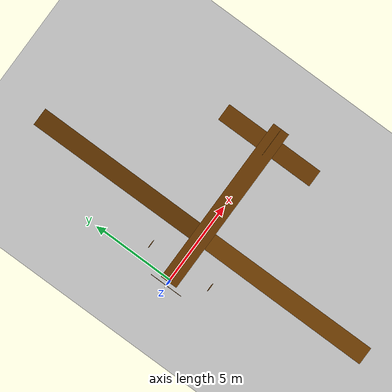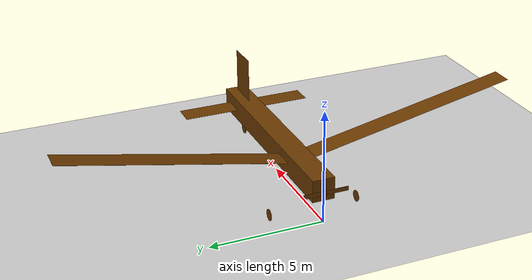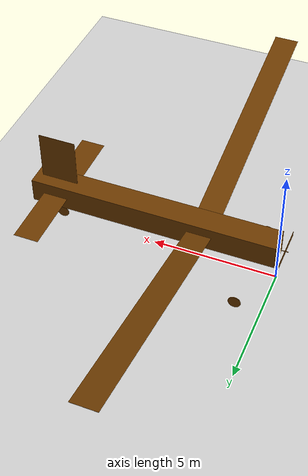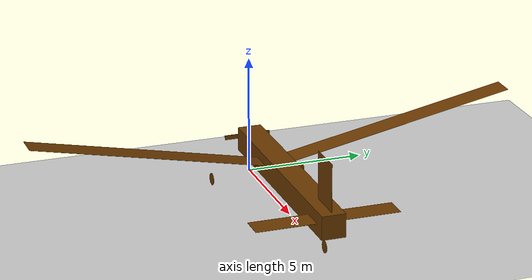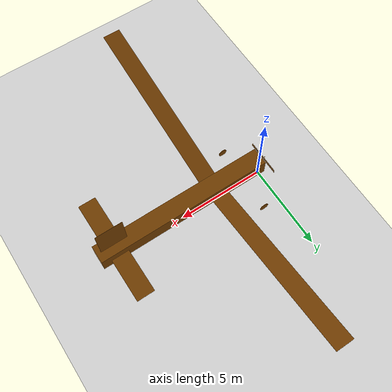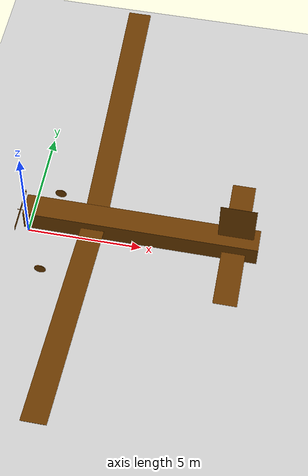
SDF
<?xml version="1.0" ?>
<sdf version="1.6">
  <world name="lift_drag">

    <plugin
      filename="ignition-gazebo-physics-system"
      name="ignition::gazebo::systems::Physics">
    </plugin>
    <plugin
      filename="ignition-gazebo-user-commands-system"
      name="ignition::gazebo::systems::UserCommands">
    </plugin>
    <plugin
      filename="ignition-gazebo-scene-broadcaster-system"
      name="ignition::gazebo::systems::SceneBroadcaster">
    </plugin>
    <gui fullscreen="0">

      <!-- 3D scene -->
      <plugin filename="GzScene3D" name="3D View">
        <ignition-gui>
          <title>3D View</title>
          <property type="bool" key="showTitleBar">false</property>
          <property type="string" key="state">docked</property>
        </ignition-gui>

        <engine>ogre2</engine>
        <scene>scene</scene>
        <ambient_light>0.4 0.4 0.4</ambient_light>
        <background_color>0.8 0.8 0.8</background_color>
        <camera_pose>20 0 3 0 0.0 3.14</camera_pose>
      </plugin>

      <!-- World control -->
      <plugin filename="WorldControl" name="World control">
        <ignition-gui>
          <title>World control</title>
          <property type="bool" key="showTitleBar">false</property>
          <property type="bool" key="resizable">false</property>
          <property type="double" key="height">72</property>
          <property type="double" key="width">121</property>
          <property type="double" key="z">1</property>

          <property type="string" key="state">floating</property>
          <anchors target="3D View">
            <line own="left" target="left"/>
            <line own="bottom" target="bottom"/>
          </anchors>
        </ignition-gui>

        <play_pause>true</play_pause>
        <step>true</step>
        <start_paused>true</start_paused>

      </plugin>

      <!-- World statistics -->
      <plugin filename="WorldStats" name="World stats">
        <ignition-gui>
          <title>World stats</title>
          <property type="bool" key="showTitleBar">false</property>
          <property type="bool" key="resizable">false</property>
          <property type="double" key="height">110</property>
          <property type="double" key="width">290</property>
          <property type="double" key="z">1</property>

          <property type="string" key="state">floating</property>
          <anchors target="3D View">
            <line own="right" target="right"/>
            <line own="bottom" target="bottom"/>
          </anchors>
        </ignition-gui>

        <sim_time>true</sim_time>
        <real_time>true</real_time>
        <real_time_factor>true</real_time_factor>
        <iterations>true</iterations>
      </plugin>
    </gui>

    <light type="directional" name="sun">
      <cast_shadows>true</cast_shadows>
      <pose>0 0 10 0 0 0</pose>
      <diffuse>1 1 1 1</diffuse>
      <specular>0.5 0.5 0.5 1</specular>
      <attenuation>
        <range>1000</range>
        <constant>0.9</constant>
        <linear>0.01</linear>
        <quadratic>0.001</quadratic>
      </attenuation>
      <direction>-0.5 0.1 -0.9</direction>
    </light>

    <model name="ground_plane">
      <static>true</static>
      <link name="link">
        <collision name="collision">
          <geometry>
            <plane>
              <normal>0 0 1</normal>
              <size>100000 100</size>
            </plane>
          </geometry>
        </collision>
        <visual name="visual">
          <geometry>
            <plane>
              <normal>0 0 1</normal>
              <size>100000 100</size>
            </plane>
          </geometry>
          <material>
            <ambient>0.8 0.8 0.8 1</ambient>
            <diffuse>0.8 0.8 0.8 1</diffuse>
            <specular>0.8 0.8 0.8 1</specular>
          </material>
        </visual>
      </link>
    </model>

    <model name="propeller_plane">
      <pose>0 0 0 0 0 0</pose>
      <static>false</static>
      <link name="body">
        <pose>5.0 0 1.5 0 0 0</pose>
        <inertial>
          <pose>-1.5 0.0 0.0 0.0 0.0 0.0</pose>
          <inertia>
            <ixx>5.8</ixx>
            <ixy>0.0</ixy>
            <ixz>0.0</ixz>
            <iyy>10.8</iyy>
            <iyz>0.0</iyz>
            <izz>10.8</izz>
          </inertia>
          <mass>200.0</mass>
        </inertial>
        <collision name="collision">
          <geometry>
            <box>
              <size>10 1 1</size>
            </box>
          </geometry>
          <surface>
            <friction>
              <ode>
                <mu>0.3</mu>
                <mu2>0.3</mu2>
              </ode>
            </friction>
          </surface>
        </collision>
        <visual name="visual">
          <geometry>
            <box>
              <size>10 1 1</size>
            </box>
          </geometry>
          <material>
            <ambient>0.2 0.2 0.2 1.0</ambient>
            <diffuse>.421 0.225 0.0 1.0</diffuse>
          </material>
        </visual>
        <sensor name="camera" type="camera">
          <pose>25 0 0.0 0 0.0 3.1416</pose>
          <camera>
            <horizontal_fov>1.347</horizontal_fov>
            <image>
              <width>320</width>
              <height>240</height>
            </image>
            <clip>
              <near>0.1</near>
              <far>1000</far>
            </clip>
          </camera>
          <always_on>1</always_on>
          <update_rate>30</update_rate>
          <visualize>true</visualize>
        </sensor>
      </link>
      <link name="wheel_1">
        <pose>9.0 0 0.25 1.57079 0 0</pose>
        <inertial>
          <pose>0.0 0.0 0.0 0.0 0.0 0.0</pose>
          <inertia>
            <ixx>0.8</ixx>
            <ixy>0.0</ixy>
            <ixz>0.0</ixz>
            <iyy>0.8</iyy>
            <iyz>0.0</iyz>
            <izz>0.8</izz>
          </inertia>
          <mass>10.0</mass>
        </inertial>
        <collision name="collision">
          <geometry>
            <cylinder>
              <radius>0.25</radius>
              <length>0.03</length>
            </cylinder>
          </geometry>
          <surface>
            <friction>
              <ode>
                <mu>0.3</mu>
                <mu2>0.3</mu2>
              </ode>
            </friction>
          </surface>
        </collision>
        <visual name="visual">
          <geometry>
            <cylinder>
              <radius>0.25</radius>
              <length>0.03</length>
            </cylinder>
          </geometry>
          <material>
            <ambient>0.2 0.2 0.2 1.0</ambient>
            <diffuse>.421 0.225 0.0 1.0</diffuse>
          </material>
        </visual>
      </link>
      <link name="wheel_2">
        <pose>1.0 -2.0 0.25 1.57079 0 0</pose>
        <inertial>
          <pose>0.0 0.0 0.0 0.0 0.0 0.0</pose>
          <inertia>
            <ixx>0.8</ixx>
            <ixy>0.0</ixy>
            <ixz>0.0</ixz>
            <iyy>0.8</iyy>
            <iyz>0.0</iyz>
            <izz>0.8</izz>
          </inertia>
          <mass>10.0</mass>
        </inertial>
        <collision name="collision">
          <geometry>
            <cylinder>
              <radius>0.25</radius>
              <length>0.03</length>
            </cylinder>
          </geometry>
          <surface>
            <friction>
              <ode>
                <mu>0.3</mu>
                <mu2>0.3</mu2>
              </ode>
            </friction>
          </surface>
        </collision>
        <visual name="visual">
          <geometry>
            <cylinder>
              <radius>0.25</radius>
              <length>0.03</length>
            </cylinder>
          </geometry>
          <material>
            <ambient>0.2 0.2 0.2 1.0</ambient>
            <diffuse>.421 0.225 0.0 1.0</diffuse>
          </material>
        </visual>
      </link>
      <link name="wheel_3">
        <pose>1.0 2.0 0.25 1.57079 0 0</pose>
        <inertial>
          <pose>0.0 0.0 0.0 0.0 0.0 0.0</pose>
          <inertia>
            <ixx>0.8</ixx>
            <ixy>0.0</ixy>
            <ixz>0.0</ixz>
            <iyy>0.8</iyy>
            <iyz>0.0</iyz>
            <izz>0.8</izz>
          </inertia>
          <mass>10.0</mass>
        </inertial>
        <collision name="collision">
          <geometry>
            <cylinder>
              <radius>0.25</radius>
              <length>0.03</length>
            </cylinder>
          </geometry>
          <surface>
            <friction>
              <ode>
                <mu>0.3</mu>
                <mu2>0.3</mu2>
              </ode>
            </friction>
          </surface>
        </collision>
        <visual name="visual">
          <geometry>
            <cylinder>
              <radius>0.25</radius>
              <length>0.03</length>
            </cylinder>
          </geometry>
          <material>
            <ambient>0.2 0.2 0.2 1.0</ambient>
            <diffuse>.421 0.225 0.0 1.0</diffuse>
          </material>
        </visual>
      </link>
      <link name="rod_1">
        <pose>-0.25 0 1.5 0 0 0</pose>
        <inertial>
          <pose>0.0 0.0 0 0.0 0.0 0.0</pose>
          <inertia>
            <ixx>0.0012</ixx>
            <ixy>0.0</ixy>
            <ixz>0.0</ixz>
            <iyy>0.012</iyy>
            <iyz>0.0</iyz>
            <izz>0.012</izz>
          </inertia>
          <mass>1.0</mass>
        </inertial>
        <collision name="collision">
          <geometry>
            <box>
              <size>0.25 0.02 0.02</size>
            </box>
          </geometry>
        </collision>
        <visual name="visual">
          <geometry>
            <box>
              <size>0.25 0.02 0.02</size>
            </box>
          </geometry>
          <material>
            <ambient>0.3 0.3 0.3 1.0</ambient>
            <diffuse>.421 0.225 0.0 1.0</diffuse>
          </material>
        </visual>
      </link>

      <!-- propeller -->
      <link name="blade_1">
        <pose>-0.25 0 1.5 0 0 0</pose>
        <inertial>
          <pose>0.0 0.5 0 0.0 0.0 0.0</pose>
          <inertia>
            <ixx>0.00465</ixx>
            <ixy>0.0</ixy>
            <ixz>0.0</ixz>
            <iyy>0.00006</iyy>
            <iyz>0.0</iyz>
            <izz>0.00470</izz>
          </inertia>
          <mass>0.1</mass>
        </inertial>
        <collision name="collision">
          <pose>0.0 0.5 0 0.0 0.0 0.0</pose>
          <geometry>
            <box>
              <size>0.01 1.0 0.2</size>
            </box>
          </geometry>
        </collision>
        <visual name="visual">
          <pose>0.0 0.5 0 0.0 0.0 0.0</pose>
          <geometry>
            <box>
              <size>0.01 1.0 0.2</size>
            </box>
          </geometry>
          <material>
            <ambient>0.5 0.2 0.2 1.0</ambient>
            <diffuse>.421 0.225 0.0 1.0</diffuse>
          </material>
        </visual>
      </link>
      <link name="blade_2">
        <pose>-0.25 0 1.5 0 0 3.141593</pose>
        <inertial>
          <pose>0.0 0.5 0 0.0 0.0 0.0</pose>
          <inertia>
            <ixx>0.00465</ixx>
            <ixy>0.0</ixy>
            <ixz>0.0</ixz>
            <iyy>0.00006</iyy>
            <iyz>0.0</iyz>
            <izz>0.00470</izz>
          </inertia>
          <mass>0.1</mass>
        </inertial>
        <collision name="collision">
          <pose>0.0 0.5 0 0.0 0.0 0.0</pose>
          <geometry>
            <box>
              <size>0.01 1.0 0.2</size>
            </box>
          </geometry>
        </collision>
        <visual name="visual">
          <pose>0.0 0.5 0 0.0 0.0 0</pose>
          <geometry>
            <box>
              <size>0.01 1.0 0.2</size>
            </box>
          </geometry>
          <material>
            <ambient>0.2 0.5 0.2 1.0</ambient>
            <diffuse>.421 0.225 0.0 1.0</diffuse>
          </material>
        </visual>
      </link>
      <joint name="blade_1_joint" type="fixed">
        <parent>rod_1</parent>
        <child>blade_1</child>
        <pose>0.0 0.0 0.0 0.0 0.0 0.0</pose>
      </joint>
      <joint name="blade_2_joint" type="fixed">
        <parent>rod_1</parent>
        <child>blade_2</child>
        <pose>0.0 0.0 0.0 0.0 0.0 0.0</pose>
      </joint>
      <plugin
        filename="ignition-gazebo-lift-drag-system"
        name="ignition::gazebo::systems::LiftDrag">
        <a0>0.2</a0>
        <cla>10.000</cla>
        <cda>0.0001</cda>
        <cma>0.00</cma>
        <alpha_stall>10.0</alpha_stall>
        <cla_stall>1.0</cla_stall>
        <cda_stall>0.001</cda_stall>
        <cma_stall>0.0</cma_stall>
        <cp>0.0 0.5 0</cp>
        <area>0.2</area>
        <air_density>1.2041</air_density>
        <forward>0 0 -1</forward>
        <upward>-1 0 0</upward>
        <link_name>blade_1</link_name>
      </plugin>
      <plugin
        filename="ignition-gazebo-lift-drag-system"
        name="ignition::gazebo::systems::LiftDrag">
        <a0>0.2</a0>
        <cla>10.000</cla>
        <cda>0.0001</cda>
        <cma>0.00</cma>
        <alpha_stall>10.0</alpha_stall>
        <cla_stall>1.0</cla_stall>
        <cda_stall>0.001</cda_stall>
        <cma_stall>0.0</cma_stall>
        <cp>0.0 0.5 0</cp>
        <area>0.2</area>
        <air_density>1.2041</air_density>
        <forward>0 0 1</forward>
        <upward>1 0 0</upward>
        <link_name>blade_2</link_name>
      </plugin>
      <joint name="wheel_1_joint" type="revolute">
        <parent>body</parent>
        <child>wheel_1</child>
        <pose>0.0 0.0 0.0 0.0 0.0 0.0</pose>
        <axis>
          <use_parent_model_frame>1</use_parent_model_frame>
          <limit>
            <lower>-1e16</lower>
            <upper>1e16</upper>
          </limit>
          <xyz>0.0 1.0 0.0</xyz>
          <dynamics>
            <damping>0.0001</damping>
          </dynamics>
        </axis>
        <physics>
          <ode>
            <implicit_spring_damper>1</implicit_spring_damper>
          </ode>
        </physics>
      </joint>
      <joint name="wheel_2_joint" type="revolute">
        <parent>body</parent>
        <child>wheel_2</child>
        <pose>0.0 0.0 0.0 0.0 0.0 0.0</pose>
        <axis>
          <use_parent_model_frame>1</use_parent_model_frame>
          <limit>
            <lower>-1e16</lower>
            <upper>1e16</upper>
          </limit>
          <xyz>0.0 1.0 0.0</xyz>
          <dynamics>
            <damping>0.0001</damping>
          </dynamics>
        </axis>
        <physics>
          <ode>
            <implicit_spring_damper>1</implicit_spring_damper>
          </ode>
        </physics>
      </joint>
      <joint name="wheel_3_joint" type="revolute">
        <parent>body</parent>
        <child>wheel_3</child>
        <pose>0.0 0.0 0.0 0.0 0.0 0.0</pose>
        <axis>
          <use_parent_model_frame>1</use_parent_model_frame>
          <limit>
            <lower>-1e16</lower>
            <upper>1e16</upper>
          </limit>
          <xyz>0.0 1.0 0.0</xyz>
          <dynamics>
            <damping>0.0001</damping>
          </dynamics>
        </axis>
        <physics>
          <ode>
            <implicit_spring_damper>1</implicit_spring_damper>
          </ode>
        </physics>
      </joint>
      <joint name="rod_1_joint" type="revolute">
        <parent>body</parent>
        <child>rod_1</child>
        <axis>
          <use_parent_model_frame>0</use_parent_model_frame>
          <limit>
            <lower>-1e16</lower>
            <upper>1e16</upper>
          </limit>
          <xyz>-1.0 0.0 0.0</xyz>
          <dynamics>
            <damping>0.001</damping>
          </dynamics>
        </axis>
        <physics>
          <ode>
            <implicit_spring_damper>1</implicit_spring_damper>
          </ode>
        </physics>
      </joint>

      <link name="wing_right">
        <pose>3 0 1.5 0.2 0 0</pose>
        <inertial>
          <pose>0.0 5.5 0 0.0 0.0 0.0</pose>
          <inertia>
            <ixx>0.465</ixx>
            <ixy>0.0</ixy>
            <ixz>0.0</ixz>
            <iyy>0.006</iyy>
            <iyz>0.0</iyz>
            <izz>0.470</izz>
          </inertia>
          <mass>10.0</mass>
        </inertial>
        <collision name="collision">
          <pose>0.0 5.5 0 0.0 0.0 0.0</pose>
          <geometry>
            <box>
              <size>1.0 10.0 0.01</size>
            </box>
          </geometry>
        </collision>
        <visual name="visual">
          <pose>0.0 5.5 0 0.0 0.0 0.0</pose>
          <geometry>
            <box>
              <size>1.0 10.0 0.01</size>
            </box>
          </geometry>
          <material>
            <ambient>0.5 0.2 0.2 1.0</ambient>
            <diffuse>.421 0.225 0.0 1.0</diffuse>
          </material>
        </visual>
      </link>
      <link name="wing_left">
        <pose>3 0 1.5 -0.2 0 0</pose>
        <inertial>
          <pose>0.0 -5.5 0 0.0 0.0 0.0</pose>
          <inertia>
            <ixx>0.465</ixx>
            <ixy>0.0</ixy>
            <ixz>0.0</ixz>
            <iyy>0.006</iyy>
            <iyz>0.0</iyz>
            <izz>0.470</izz>
          </inertia>
          <mass>10.0</mass>
        </inertial>
        <collision name="collision">
          <pose>0.0 -5.5 0 0.0 0.0 0.0</pose>
          <geometry>
            <box>
              <size>1.0 10.0 0.01</size>
            </box>
          </geometry>
        </collision>
        <visual name="visual">
          <pose>0.0 -5.5 0 0.0 0.0 0</pose>
          <geometry>
            <box>
              <size>1.0 10.0 0.01</size>
            </box>
          </geometry>
          <material>
            <ambient>0.2 0.5 0.2 1.0</ambient>
            <diffuse>.421 0.225 0.0 1.0</diffuse>
          </material>
        </visual>
      </link>
      <joint name="wing_right_joint" type="fixed">
        <parent>body</parent>
        <child>wing_right</child>
        <pose>0.0 0.0 0.0 0.0 0.0 0.0</pose>
        <axis>
          <limit>
            <lower>-0.3</lower>
            <upper>0.3</upper>
          </limit>
          <xyz>0.0 0.98 0.198669</xyz>
          <dynamics>
            <damping>5.000000</damping>
          </dynamics>
        </axis>
        <physics>
          <ode>
            <implicit_spring_damper>1</implicit_spring_damper>
          </ode>
        </physics>
      </joint>
      <joint name="wing_left_joint" type="fixed">
        <parent>body</parent>
        <child>wing_left</child>
        <pose>0.0 0.0 0.0 0.0 0.0 0.0</pose>
        <axis>
          <limit>
            <lower>-0.3</lower>
            <upper>0.3</upper>
          </limit>
          <xyz>0.0 -0.98 0.198669</xyz>
          <dynamics>
            <damping>5.000000</damping>
          </dynamics>
        </axis>
        <physics>
          <ode>
            <implicit_spring_damper>1</implicit_spring_damper>
          </ode>
        </physics>
      </joint>

      <link name="elevator">
        <pose>9 0 1.5 0 0 0</pose>
        <inertial>
          <pose>0.0 0.0 0 0.0 0.0 0.0</pose>
          <inertia>
            <ixx>0.0465</ixx>
            <ixy>0.0</ixy>
            <ixz>0.0</ixz>
            <iyy>0.006</iyy>
            <iyz>0.0</iyz>
            <izz>0.0470</izz>
          </inertia>
          <mass>4.0</mass>
        </inertial>
        <collision name="collision">
          <pose>0.0 0.0 0 0.0 0.0 0.0</pose>
          <geometry>
            <box>
              <size>1.0 6.0 0.01</size>
            </box>
          </geometry>
        </collision>
        <visual name="visual">
          <pose>0.0 0.0 0 0.0 0.0 0.0</pose>
          <geometry>
            <box>
              <size>1.0 6.0 0.01</size>
            </box>
          </geometry>
          <material>
            <ambient>0.5 0.2 0.2 1.0</ambient>
            <diffuse>.421 0.225 0.0 1.0</diffuse>
          </material>
        </visual>
      </link>
      <joint name="elevator_joint" type="fixed">
        <parent>body</parent>
        <child>elevator</child>
        <pose>0.0 0.0 0.0 0.0 0.0 0.0</pose>
        <axis>
          <limit>
            <lower>-0.5</lower>
            <upper>0.5</upper>
          </limit>
          <xyz>0.0 1.0 0.0</xyz>
          <dynamics>
            <damping>5.000000</damping>
          </dynamics>
        </axis>
        <physics>
          <ode>
            <implicit_spring_damper>1</implicit_spring_damper>
          </ode>
        </physics>
      </joint>

      <link name="rudder">
        <pose>9 0 2.0 0 0 0</pose>
        <inertial>
          <pose>0.0 0 1 0.0 0.0 0.0</pose>
          <inertia>
            <ixx>0.0465</ixx>
            <ixy>0.0</ixy>
            <ixz>0.0</ixz>
            <iyy>0.0006</iyy>
            <iyz>0.0</iyz>
            <izz>0.0470</izz>
          </inertia>
          <mass>2.0</mass>
        </inertial>
        <collision name="collision">
          <pose>0.0 0 1 0.0 0.0 0.0</pose>
          <geometry>
            <box>
              <size>1.5 0.01 2.0</size>
            </box>
          </geometry>
        </collision>
        <visual name="visual">
          <pose>0.0 0 1 0.0 0.0 0</pose>
          <geometry>
            <box>
              <size>1.5 0.01 2.0</size>
            </box>
          </geometry>
          <material>
            <ambient>0.2 0.5 0.2 1.0</ambient>
            <diffuse>.421 0.225 0.0 1.0</diffuse>
          </material>
        </visual>
      </link>
      <joint name="rudder_joint" type="fixed">
        <parent>body</parent>
        <child>rudder</child>
        <pose>0.0 0.0 0.0 0.0 0.0 0.0</pose>
        <axis>
          <limit>
            <lower>-0.3</lower>
            <upper>0.3</upper>
          </limit>
          <xyz>0.0 0.0 1.0</xyz>
          <dynamics>
            <damping>5.000000</damping>
          </dynamics>
        </axis>
        <physics>
          <ode>
            <implicit_spring_damper>1</implicit_spring_damper>
          </ode>
        </physics>
      </joint>

      <plugin
        filename="ignition-gazebo-lift-drag-system"
        name="ignition::gazebo::systems::LiftDrag">
        <a0>0.1</a0>
        <cla>4.000</cla>
        <cda>0.001</cda>
        <cma>0.00</cma>
        <alpha_stall>1.0</alpha_stall>
        <cla_stall>-1.0</cla_stall>
        <cda_stall>0.00</cda_stall>
        <cma_stall>0.0</cma_stall>
        <cp>0.0 5.0 0</cp>
        <area>10</area>
        <air_density>1.2041</air_density>
        <forward>-1 0 0</forward>
        <upward>0 0 1</upward>
        <link_name>wing_right</link_name>
      </plugin>
      <plugin
        filename="ignition-gazebo-lift-drag-system"
        name="ignition::gazebo::systems::LiftDrag">
        <a0>0.1</a0>
        <cla>4.000</cla>
        <cda>0.001</cda>
        <cma>0.00</cma>
        <alpha_stall>1.0</alpha_stall>
        <cla_stall>-1.0</cla_stall>
        <cda_stall>0.0</cda_stall>
        <cma_stall>0.0</cma_stall>
        <cp>0.0 -5.0 0</cp>
        <area>10</area>
        <air_density>1.2041</air_density>
        <forward>-1 0 0</forward>
        <upward>0 0 1</upward>
        <link_name>wing_left</link_name>
      </plugin>
      <plugin
        filename="ignition-gazebo-lift-drag-system"
        name="ignition::gazebo::systems::LiftDrag">
        <a0>0.02</a0>
        <cla>4.000</cla>
        <cda>0.001</cda>
        <cma>0.00</cma>
        <alpha_stall>1.0</alpha_stall>
        <cla_stall>-1.0</cla_stall>
        <cda_stall>0.0</cda_stall>
        <cma_stall>0.0</cma_stall>
        <cp>0.0 1.5 0</cp>
        <area>3</area>
        <air_density>1.2041</air_density>
        <forward>-1 0 0</forward>
        <upward>0 0 1</upward>
        <link_name>elevator</link_name>
      </plugin>
      <plugin
        filename="ignition-gazebo-lift-drag-system"
        name="ignition::gazebo::systems::LiftDrag">
        <a0>0.02</a0>
        <cla>4.000</cla>
        <cda>0.001</cda>
        <cma>0.00</cma>
        <alpha_stall>1.0</alpha_stall>
        <cla_stall>-1.0</cla_stall>
        <cda_stall>0.0</cda_stall>
        <cma_stall>0.0</cma_stall>
        <cp>0.0 -1.5 0</cp>
        <area>3</area>
        <air_density>1.2041</air_density>
        <forward>-1 0 0</forward>
        <upward>0 0 1</upward>
        <link_name>elevator</link_name>
      </plugin>
      <plugin
        filename="ignition-gazebo-lift-drag-system"
        name="ignition::gazebo::systems::LiftDrag">
        <!-- force turn -->
        <a0>0.00</a0>
        <cla>2.000</cla>
        <cda>0.001</cda>
        <cma>0.00</cma>
        <alpha_stall>1.0</alpha_stall>
        <cla_stall>-1.0</cla_stall>
        <cda_stall>0.0</cda_stall>
        <cma_stall>0.0</cma_stall>
        <cp>0.0 0 1</cp>
        <area>3</area>
        <air_density>1.2041</air_density>
        <forward>-1 0 0</forward>
        <upward>0 -1 0</upward>
        <link_name>rudder</link_name>
      </plugin>
      <plugin
        filename="ignition-gazebo-apply-joint-force-system"
        name="ignition::gazebo::systems::ApplyJointForce">
        <joint_name>rod_1_joint</joint_name>
      </plugin>
    </model>
  </world>
</sdf>
